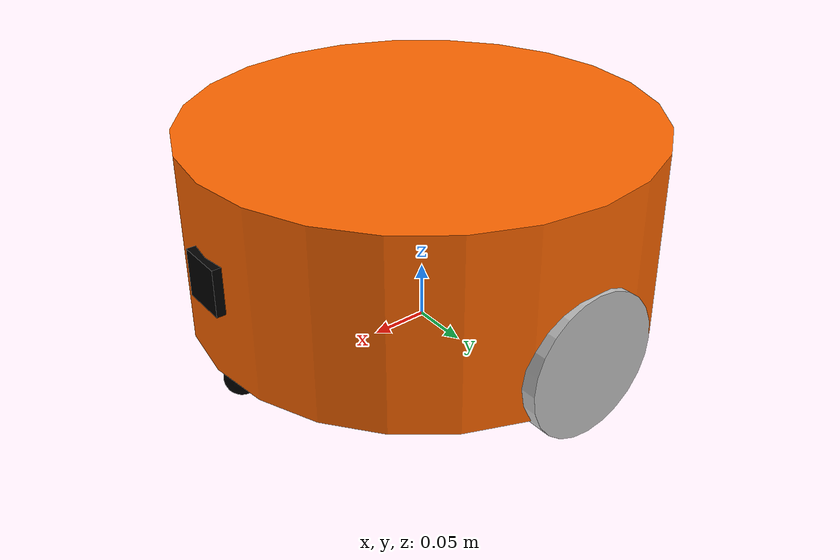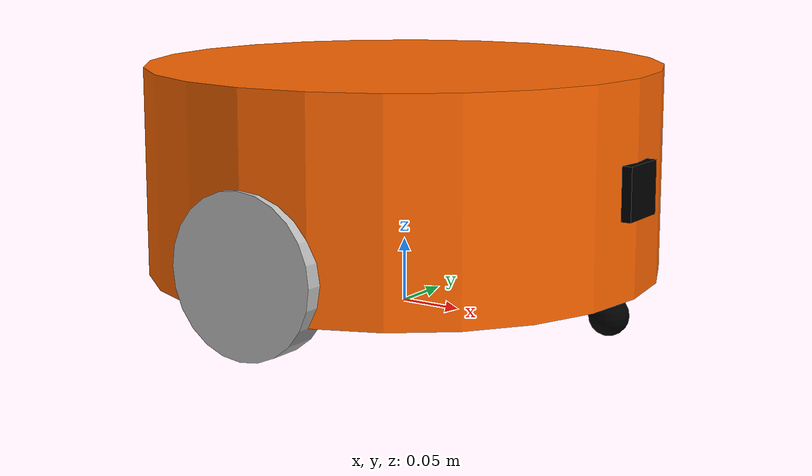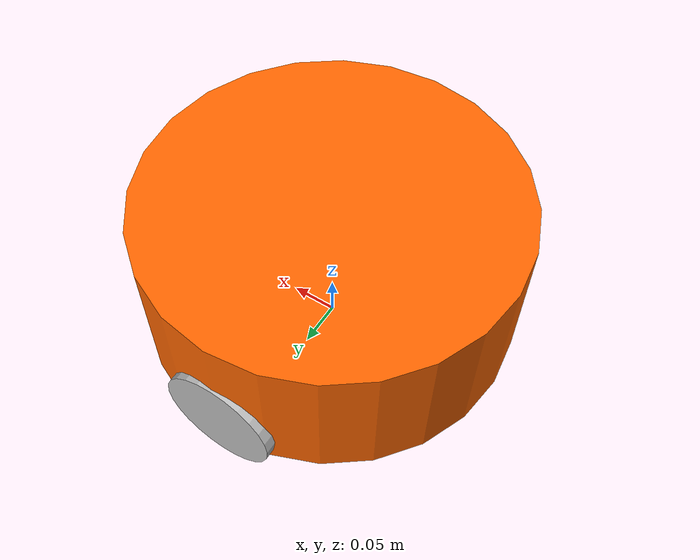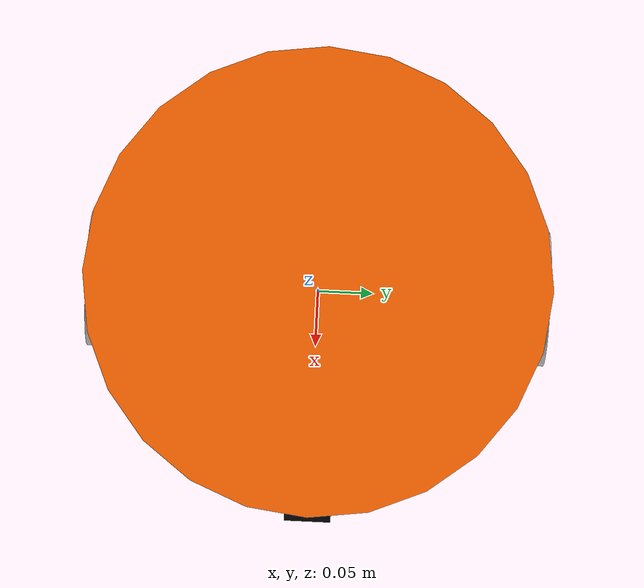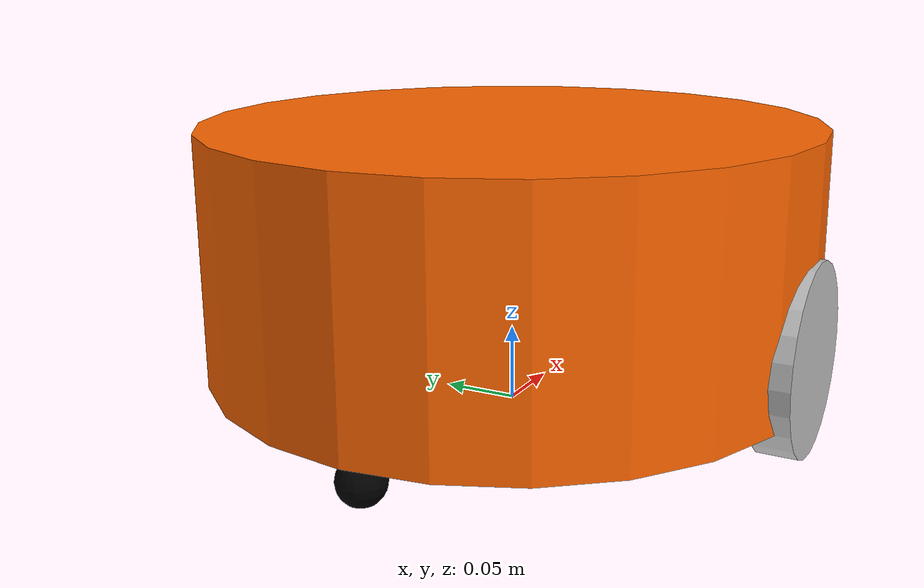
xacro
<robot name="mbot" xmlns:xacro="http://www.ros.org/wiki/xacro">

    <xacro:include filename="$(find mbot_sim)/urdf/xacro/mbot_base.xacro" />
    <xacro:include filename="$(find mbot_sim)/urdf/xacro/mbot_camera.xacro" />

    <xacro:property name="camera_offset_x" value="0.2" />
    <xacro:property name="camera_offset_y" value="0" />
    <xacro:property name="camera_offset_z" value="0" />

    <xacro:mbot_base_gazebo/>

    <!-- Camera -->
    <joint name="camera_joint" type="fixed">
        <origin xyz="${camera_offset_x} ${camera_offset_y} ${camera_offset_z}" rpy="0 0 0" />
        <parent link="base_link"/>
        <child link="camera_link"/>
    </joint>

    <xacro:usb_camera prefix="camera"/>

</robot>

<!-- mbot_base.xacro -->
<robot name="mbot" xmlns:xacro="http://www.ros.org/wiki/xacro">

    <!-- PROPERTY LIST -->
    <xacro:property name="M_PI" value="3.1415926"/>
    <xacro:property name="base_mass"   value="20" />
    <xacro:property name="base_radius" value="0.20"/>
    <xacro:property name="base_length" value="0.16"/>

    <xacro:property name="wheel_mass"   value="2" />
    <xacro:property name="wheel_radius" value="0.06"/>
    <xacro:property name="wheel_length" value="0.025"/>
    <xacro:property name="wheel_joint_y" value="0.19"/>
    <xacro:property name="wheel_joint_z" value="0.05"/>

    <xacro:property name="caster_mass"    value="0.5" />
    <xacro:property name="caster_radius"  value="0.015"/> <!-- wheel_radius - ( base_length/2 - wheel_joint_z) -->
    <xacro:property name="caster_joint_x" value="0.18"/>

    <!-- Defining the colors used in this robot -->
    <material name="yellow">
        <color rgba="1 0.4 0 1"/>
    </material>
    <material name="black">
        <color rgba="0 0 0 0.95"/>
    </material>
    <material name="gray">
        <color rgba="0.75 0.75 0.75 1"/>
    </material>

    <!-- Macro for inertia matrix -->
    <xacro:macro name="sphere_inertial_matrix" params="m r">
        <inertial>
            <mass value="${m}" />
            <inertia ixx="${2*m*r*r/5}" ixy="0" ixz="0"
                iyy="${2*m*r*r/5}" iyz="0"
                izz="${2*m*r*r/5}" />
        </inertial>
    </xacro:macro>

    <xacro:macro name="cylinder_inertial_matrix" params="m r h">
        <inertial>
            <mass value="${m}" />
            <inertia ixx="${m*(3*r*r+h*h)/12}" ixy = "0" ixz = "0"
                iyy="${m*(3*r*r+h*h)/12}" iyz = "0"
                izz="${m*r*r/2}" />
        </inertial>
    </xacro:macro>

    <!-- Macro for robot wheel -->
    <xacro:macro name="wheel" params="prefix reflect">
        <joint name="${prefix}_wheel_joint" type="continuous">
            <origin xyz="0 ${reflect*wheel_joint_y} ${-wheel_joint_z}" rpy="0 0 0"/>
            <parent link="base_link"/>
            <child link="${prefix}_wheel_link"/>
            <axis xyz="0 1 0"/>
        </joint>

        <link name="${prefix}_wheel_link">
            <visual>
                <origin xyz="0 0 0" rpy="${M_PI/2} 0 0" />
                <geometry>
                    <cylinder radius="${wheel_radius}" length = "${wheel_length}"/>
                </geometry>
                <material name="gray" />
            </visual>
            <collision>
                <origin xyz="0 0 0" rpy="${M_PI/2} 0 0" />
                <geometry>
                    <cylinder radius="${wheel_radius}" length = "${wheel_length}"/>
                </geometry>
            </collision>
            <cylinder_inertial_matrix  m="${wheel_mass}" r="${wheel_radius}" h="${wheel_length}" />
        </link>

        <gazebo reference="${prefix}_wheel_link">
            <material>Gazebo/Gray</material>
        </gazebo>

        <transmission name="${prefix}_wheel_joint_trans">
            <type>transmission_interface/SimpleTransmission</type>
            <joint name="${prefix}_wheel_joint" >
                <hardwareInterface>hardware_interface/VelocityJointInterface</hardwareInterface>
            </joint>
            <actuator name="${prefix}_wheel_joint_motor">
                <hardwareInterface>hardware_interface/VelocityJointInterface</hardwareInterface>
                <mechanicalReduction>1</mechanicalReduction>
            </actuator>
        </transmission>
    </xacro:macro>

    <!-- Macro for robot caster -->
    <xacro:macro name="caster" params="prefix reflect">
        <joint name="${prefix}_caster_joint" type="continuous">
            <origin xyz="${reflect*caster_joint_x} 0 ${-(base_length/2 + caster_radius)}" rpy="0 0 0"/>
            <parent link="base_link"/>
            <child link="${prefix}_caster_link"/>
            <axis xyz="0 1 0"/>
        </joint>

        <link name="${prefix}_caster_link">
            <visual>
                <origin xyz="0 0 0" rpy="0 0 0"/>
                <geometry>
                    <sphere radius="${caster_radius}" />
                </geometry>
                <material name="black" />
            </visual>
            <collision>
                <origin xyz="0 0 0" rpy="0 0 0"/>
                <geometry>
                    <sphere radius="${caster_radius}" />
                </geometry>
            </collision>
            <sphere_inertial_matrix  m="${caster_mass}" r="${caster_radius}" />
        </link>

        <gazebo reference="${prefix}_caster_link">
            <material>Gazebo/Black</material>
        </gazebo>
    </xacro:macro>

    <xacro:macro name="mbot_base_gazebo">
        <link name="base_footprint">
            <visual>
                <origin xyz="0 0 0" rpy="0 0 0" />
                <geometry>
                    <box size="0.001 0.001 0.001" />
                </geometry>
            </visual>
        </link>
        <gazebo reference="base_footprint">
            <turnGravityOff>false</turnGravityOff>
        </gazebo>

        <joint name="base_footprint_joint" type="fixed">
            <origin xyz="0 0 ${base_length/2 + caster_radius*2}" rpy="0 0 0" />
            <parent link="base_footprint"/>
            <child link="base_link" />
        </joint>

        <link name="base_link">
            <visual>
                <origin xyz=" 0 0 0" rpy="0 0 0" />
                <geometry>
                    <cylinder length="${base_length}" radius="${base_radius}"/>
                </geometry>
                <material name="yellow" />
            </visual>
            <collision>
                <origin xyz=" 0 0 0" rpy="0 0 0" />
                <geometry>
                    <cylinder length="${base_length}" radius="${base_radius}"/>
                </geometry>
            </collision>
            <cylinder_inertial_matrix  m="${base_mass}" r="${base_radius}" h="${base_length}" />
        </link>

        <gazebo reference="base_link">
            <material>Gazebo/Blue</material>
        </gazebo>

        <wheel prefix="left"  reflect="-1"/>
        <wheel prefix="right" reflect="1"/>

        <caster prefix="front" reflect="-1"/>
        <caster prefix="back"  reflect="1"/>

        <!-- controller -->
        <gazebo>
            <plugin name="differential_drive_controller"
                    filename="libgazebo_ros_diff_drive.so">
                <rosDebugLevel>Debug</rosDebugLevel>
                <publishWheelTF>true</publishWheelTF>
                <publishTf>1</publishTf>
                <publishWheelJointState>true</publishWheelJointState>
                <alwaysOn>true</alwaysOn>
                <updateRate>100.0</updateRate>
                <legacyMode>true</legacyMode>
                <leftJoint>left_wheel_joint</leftJoint>
                <rightJoint>right_wheel_joint</rightJoint>
                <wheelSeparation>${wheel_joint_y*2}</wheelSeparation>
                <wheelDiameter>${2*wheel_radius}</wheelDiameter>
                <broadcastTF>1</broadcastTF>
                <wheelTorque>30</wheelTorque>
                <wheelAcceleration>1.8</wheelAcceleration>
                <commandTopic>cmd_vel</commandTopic>
                <odometryFrame>odom</odometryFrame>
                <odometryTopic>odom</odometryTopic>
                <robotBaseFrame>base_footprint</robotBaseFrame>
            </plugin>
        </gazebo>
    </xacro:macro>

</robot>

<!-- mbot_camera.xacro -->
<robot xmlns:xacro="http://www.ros.org/wiki/xacro" name="camera">

    <xacro:macro name="usb_camera" params="prefix:=camera">
        <!-- Create laser reference frame -->
        <link name="${prefix}_link">
            <inertial>
                <mass value="0.1" />
                <origin xyz="0 0 0" />
                <inertia ixx="0.01" ixy="0.0" ixz="0.0"
                         iyy="0.01" iyz="0.0"
                         izz="0.01" />
            </inertial>

            <visual>
                <origin xyz=" 0 0 0 " rpy="0 0 0" />
                <geometry>
                    <box size="0.01 0.04 0.04" />
                </geometry>
                <material name="black"/>
            </visual>

            <collision>
                <origin xyz="0.0 0.0 0.0" rpy="0 0 0" />
                <geometry>
                    <box size="0.01 0.04 0.04" />
                </geometry>
            </collision>
        </link>
        <gazebo reference="${prefix}_link">
            <material>Gazebo/Black</material>
        </gazebo>

        <gazebo reference="${prefix}_link">
            <sensor type="depth" name="camera">
                <update_rate>30.0</update_rate>
                <camera name="head">
                    <horizontal_fov>1.8</horizontal_fov>
                    <image>
                        <width>1280</width>
                        <height>720</height>
                        <format>R8G8B8</format>
                    </image>
                    <clip>
                        <near>0.02</near>
                        <far>300</far>
                    </clip>
                    <noise>
                        <type>gaussian</type>
                        <mean>0.0</mean>
                        <stddev>0.007</stddev>
                    </noise>
                </camera>
            <plugin name="kinect_camera_controller" filename="libgazebo_ros_openni_kinect.so">
                <alwaysOn>true</alwaysOn>
                <updateRate>10</updateRate>
                <cameraName>camera</cameraName>
                <imageTopicName>rgb/image_raw</imageTopicName>

                <depthImageTopicName>depth/image_raw</depthImageTopicName>
		        <pointCloudTopicName>depth/points</pointCloudTopicName>
                <frameName>camera_link</frameName>
                <baseline>0.1</baseline>
		        <distortion_k1>0.0</distortion_k1>
		        <distortion_k2>0.0</distortion_k2>
		        <distortion_k3>0.0</distortion_k3>
		        <distortion_t1>0.0</distortion_t1>
		        <distortion_t2>0.0</distortion_t2>
                <pointCloudCutoff>0</pointCloudCutoff>
            </plugin>
            </sensor>
        </gazebo>

    </xacro:macro>
</robot>
